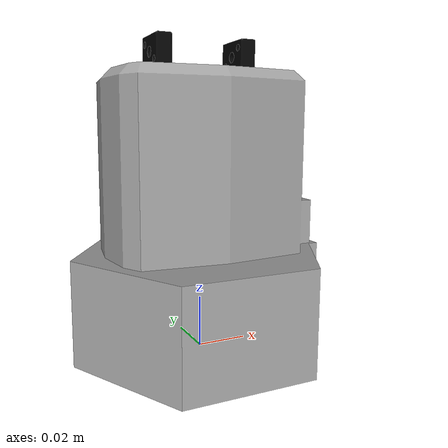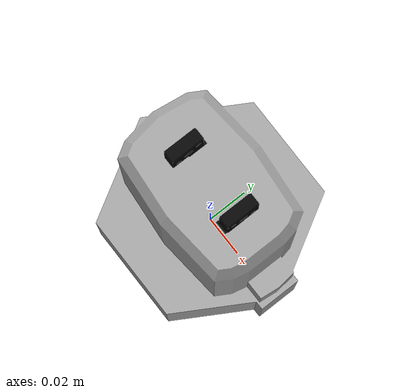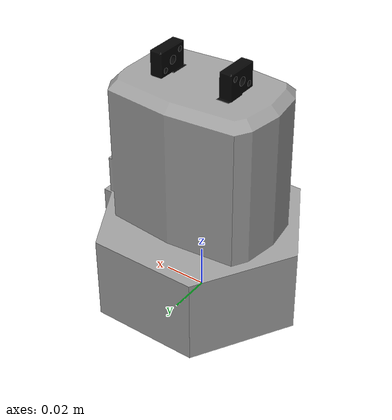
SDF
<?xml version="1.0" ?>
<sdf version='1.4'>
  <model name='schunk-egp-40'>
    <link name='SchunkEGP40_link'>
      <pose>0 0 0 0 0 0</pose>
      <inertial>
        <pose>0.00078059 -0.00070996 0.04726637 0 0 0</pose>
        <mass>0.6</mass>
        <inertia>
          <!-- Divided by volume -->
          <!-- Volume?: 0.000420444397 -->
          <ixx>0.0011357</ixx>
          <ixy>-0.00000024461</ixy>
          <ixz>0.000014912</ixz>
          <iyy>0.0012832</iyy>
          <iyz>0.0000085651</iyz>
          <izz>0.00066545</izz>
          <!-- Multiplied by Mass -->
        </inertia>
      </inertial>
      <collision name='SchunkEGP40_link_collision'>
        <pose>0 0 0 0 0 0</pose>
        <geometry>
          <mesh>
            <scale>1 1 1</scale>
            <uri>model://schunk-egp-40/meshes/schunk-egp-40-collision.dae</uri>
          </mesh>
        </geometry>
      </collision>
      <visual name='SchunkEGP40_link_visual'>
        <pose>0 0 0 0 0 0</pose>
        <geometry>
          <mesh>
            <scale>1 1 1</scale>
            <uri>model://schunk-egp-40/meshes/schunk-egp-40.dae</uri>
          </mesh>
        </geometry>
      </visual>
    </link>

    <link name='SchunkEGP40_Finger1_link'>
      <pose>0.016800 0.000500 0.108000 0 0 0</pose>
      <inertial>
        <pose>0 0 0 0 0 0</pose>
        <mass>0.04</mass>
        <inertia>
          <ixx>0.0000013454</ixx>
          <ixy>0</ixy>
          <ixz>0</ixz>
          <iyy>0.00000061207</iyy>
          <iyz>0</iyz>
          <izz>0.00000097333</izz>
        </inertia>
      </inertial>
      <collision name='SchunkEGP40_Finger1_link_collision'>
        <pose>0 0.0005 0.006075 0 0 0</pose>
        <geometry>
          <box>
            <size>0.006 0.016 0.01215</size>
          </box>
        </geometry>
      </collision>
      <visual name='SchunkEGP40_Finger1_link_visual'>
        <pose>0 0 0 0 0 0</pose>
        <geometry>
          <mesh>
            <scale>1 1 1</scale>
            <uri>model://schunk-egp-40/meshes/schunk-egp-40-finger-base.dae</uri>
          </mesh>
        </geometry>
      </visual>
    </link>

    <link name='SchunkEGP40_Finger2_link'>
      <pose>-0.016800 0.000500 0.108000 0 0 3.14</pose>
      <inertial>
        <pose>0 0 0 0 0 0</pose>
        <mass>0.04</mass>
        <inertia>
          <ixx>0.0000013454</ixx>
          <ixy>0</ixy>
          <ixz>0</ixz>
          <iyy>0.00000061207</iyy>
          <iyz>0</iyz>
          <izz>0.00000097333</izz>
        </inertia>
      </inertial>
      <collision name='SchunkEGP40_Finger2_link_collision'>
        <pose>0 0.0005 0.006075 0 0 0</pose>
        <geometry>
          <box>
            <size>0.006 0.016 0.01215</size>
          </box>
        </geometry>
      </collision>
      <visual name='SchunkEGP40_Finger2_link_visual'>
        <pose>0 0 0 0 0 0</pose>
        <geometry>
          <mesh>
            <scale>1 1 1</scale>
            <uri>model://schunk-egp-40/meshes/schunk-egp-40-finger-base.dae</uri>
          </mesh>
        </geometry>
      </visual>
    </link>

    <joint name='SchunkEGP40_Finger2_joint' type='prismatic'>
      <provide_feedback>true</provide_feedback>
      <parent>SchunkEGP40_link</parent>
      <child>SchunkEGP40_Finger2_link</child>
      <pose frame=''>0 0 0 0 0 0</pose>
      <axis>
        <xyz>-1 0 0</xyz>
        <use_parent_model_frame>0</use_parent_model_frame>
        <limit>
          <lower>0</lower>
          <upper>0.01</upper>
          <effort>1</effort>
          <velocity>-1</velocity>
        </limit>
        <dynamics>
          <spring_reference>0</spring_reference>
          <spring_stiffness>0</spring_stiffness>
          <damping>1</damping>
          <friction>0</friction>
        </dynamics>
      </axis>
      <physics>
        <ode>
          <limit>
            <cfm>0</cfm>
            <erp>0.2</erp>
          </limit>
          <suspension>
            <cfm>0</cfm>
            <erp>0.2</erp>
          </suspension>
        </ode>
      </physics>
    </joint>
    <joint name='SchunkEGP40_Finger1_joint' type='prismatic'>
      <provide_feedback>true</provide_feedback>
      <parent>SchunkEGP40_link</parent>
      <child>SchunkEGP40_Finger1_link</child>
      <pose frame=''>0 0 0 0 0 0</pose>
      <axis>
        <xyz>-1 0 0</xyz>
        <use_parent_model_frame>0</use_parent_model_frame>
        <limit>
          <lower>0</lower>
          <upper>0.01</upper>
          <effort>1</effort>
          <velocity>-1</velocity>
        </limit>
        <dynamics>
          <spring_reference>0</spring_reference>
          <spring_stiffness>0</spring_stiffness>
          <damping>1</damping>
          <friction>0</friction>
        </dynamics>
      </axis>
      <physics>
        <ode>
          <limit>
            <cfm>0</cfm>
            <erp>0.2</erp>
          </limit>
          <suspension>
            <cfm>0</cfm>
            <erp>0.2</erp>
          </suspension>
        </ode>
      </physics>
    </joint>

    <pose frame=''>0 0 0 0 0 0</pose>
  </model>
</sdf>
